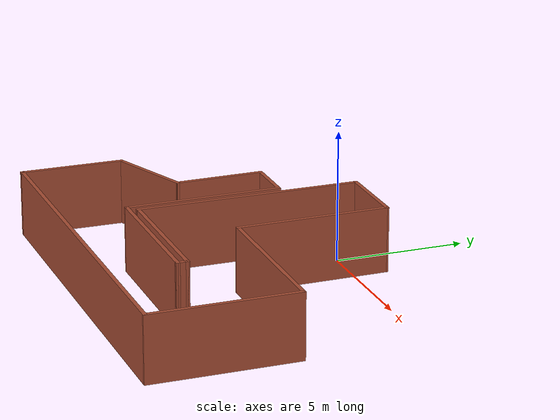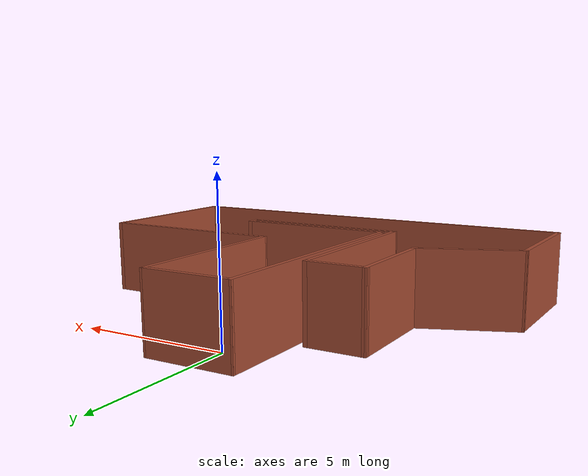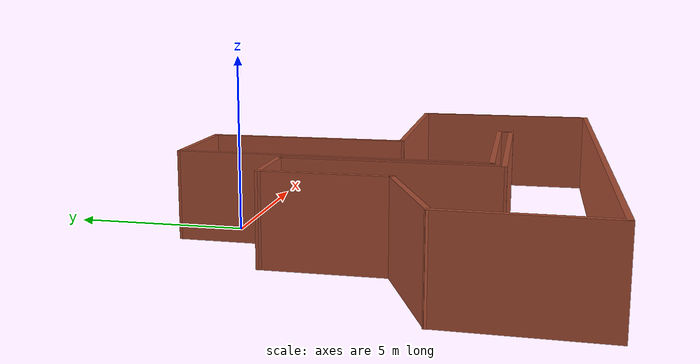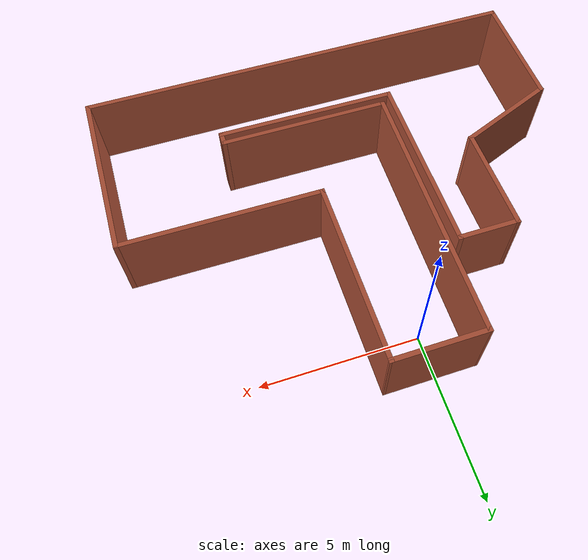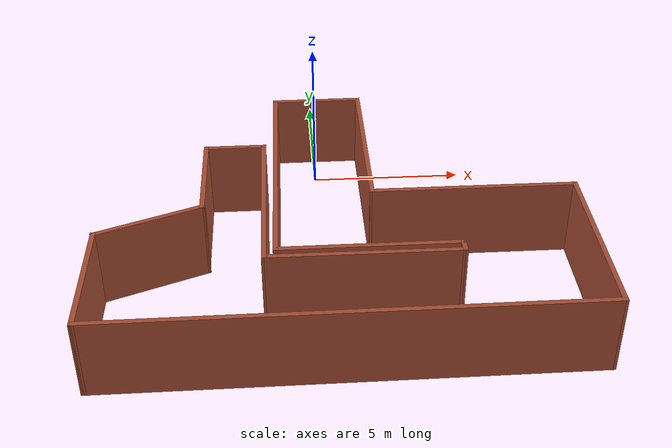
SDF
<?xml version='1.0'?>
<sdf version='1.7'>
  <model name='mini_maze'>
    <pose>0.607546 -4.37595 0 0 -0 0</pose>
    <link name='Wall_10'>
      <collision name='Wall_10_Collision'>
        <geometry>
          <box>
            <size>2 0.15 2.5</size>
          </box>
        </geometry>
        <pose>0 0 1.25 0 -0 0</pose>
      </collision>
      <visual name='Wall_10_Visual'>
        <pose>0 0 1.25 0 -0 0</pose>
        <geometry>
          <box>
            <size>2 0.15 2.5</size>
          </box>
        </geometry>
        <material>
          <script>
            <uri>file://media/materials/scripts/gazebo.material</uri>
            <name>Gazebo/Bricks</name>
          </script>
          <ambient>1 1 1 1</ambient>
        </material>
        <meta>
          <layer>0</layer>
        </meta>
      </visual>
      <pose>-3.23644 2.71458 0 0 -0 0</pose>
    </link>
    <link name='Wall_11'>
      <collision name='Wall_11_Collision'>
        <geometry>
          <box>
            <size>6 0.15 2.5</size>
          </box>
        </geometry>
        <pose>0 0 1.25 0 -0 0</pose>
      </collision>
      <visual name='Wall_11_Visual'>
        <pose>0 0 1.25 0 -0 0</pose>
        <geometry>
          <box>
            <size>6 0.15 2.5</size>
          </box>
        </geometry>
        <material>
          <script>
            <uri>file://media/materials/scripts/gazebo.material</uri>
            <name>Gazebo/Bricks</name>
          </script>
          <ambient>1 1 1 1</ambient>
        </material>
        <meta>
          <layer>0</layer>
        </meta>
      </visual>
      <pose>-2.31144 -0.210418 0 0 -0 -1.5708</pose>
    </link>
    <link name='Wall_12'>
      <collision name='Wall_12_Collision'>
        <geometry>
          <box>
            <size>5.82956 0.15 2.5</size>
          </box>
        </geometry>
        <pose>0 0 1.25 0 -0 0</pose>
      </collision>
      <visual name='Wall_12_Visual'>
        <pose>0 0 1.25 0 -0 0</pose>
        <geometry>
          <box>
            <size>5.82956 0.15 2.5</size>
          </box>
        </geometry>
        <material>
          <script>
            <uri>file://media/materials/scripts/gazebo.material</uri>
            <name>Gazebo/Bricks</name>
          </script>
          <ambient>1 1 1 1</ambient>
        </material>
        <meta>
          <layer>0</layer>
        </meta>
      </visual>
      <pose>0.528321 -3.14603 0 0 -0 -0.003737</pose>
    </link>
    <link name='Wall_13'>
      <collision name='Wall_13_Collision'>
        <geometry>
          <box>
            <size>0.5 0.15 2.5</size>
          </box>
        </geometry>
        <pose>0 0 1.25 0 -0 0</pose>
      </collision>
      <visual name='Wall_13_Visual'>
        <pose>0 0 1.25 0 -0 0</pose>
        <geometry>
          <box>
            <size>0.5 0.15 2.5</size>
          </box>
        </geometry>
        <material>
          <script>
            <uri>file://media/materials/scripts/gazebo.material</uri>
            <name>Gazebo/Bricks</name>
          </script>
          <ambient>1 1 1 1</ambient>
        </material>
        <meta>
          <layer>0</layer>
        </meta>
      </visual>
      <pose>3.36808 -2.98164 0 0 -0 1.5708</pose>
    </link>
    <link name='Wall_14'>
      <collision name='Wall_14_Collision'>
        <geometry>
          <box>
            <size>5.5 0.15 2.5</size>
          </box>
        </geometry>
        <pose>0 0 1.25 0 -0 0</pose>
      </collision>
      <visual name='Wall_14_Visual'>
        <pose>0 0 1.25 0 -0 0</pose>
        <geometry>
          <box>
            <size>5.5 0.15 2.5</size>
          </box>
        </geometry>
        <material>
          <script>
            <uri>file://media/materials/scripts/gazebo.material</uri>
            <name>Gazebo/Bricks</name>
          </script>
          <ambient>1 1 1 1</ambient>
        </material>
        <meta>
          <layer>0</layer>
        </meta>
      </visual>
      <pose>0.693081 -2.80664 0 0 -0 3.14159</pose>
    </link>
    <link name='Wall_15'>
      <collision name='Wall_15_Collision'>
        <geometry>
          <box>
            <size>8.59355 0.15 2.5</size>
          </box>
        </geometry>
        <pose>0 0 1.25 0 -0 0</pose>
      </collision>
      <visual name='Wall_15_Visual'>
        <pose>0 0 1.25 0 -0 0</pose>
        <geometry>
          <box>
            <size>8.59355 0.15 2.5</size>
          </box>
        </geometry>
        <material>
          <script>
            <uri>file://media/materials/scripts/gazebo.material</uri>
            <name>Gazebo/Bricks</name>
          </script>
          <ambient>1 1 1 1</ambient>
        </material>
        <meta>
          <layer>0</layer>
        </meta>
      </visual>
      <pose>-1.93911 1.41492 0 0 -0 1.56065</pose>
    </link>
    <link name='Wall_2'>
      <collision name='Wall_2_Collision'>
        <geometry>
          <box>
            <size>3 0.15 2.5</size>
          </box>
        </geometry>
        <pose>0 0 1.25 0 -0 0</pose>
      </collision>
      <visual name='Wall_2_Visual'>
        <pose>0 0 1.25 0 -0 0</pose>
        <geometry>
          <box>
            <size>3 0.15 2.5</size>
          </box>
        </geometry>
        <material>
          <script>
            <uri>file://media/materials/scripts/gazebo.material</uri>
            <name>Gazebo/Bricks</name>
          </script>
          <ambient>1 1 1 1</ambient>
        </material>
        <meta>
          <layer>0</layer>
        </meta>
      </visual>
      <pose>-0.471292 5.63647 0 0 -0 0</pose>
    </link>
    <link name='Wall_3'>
      <collision name='Wall_3_Collision'>
        <geometry>
          <box>
            <size>5.86232 0.15 2.5</size>
          </box>
        </geometry>
        <pose>0 0 1.25 0 -0 0</pose>
      </collision>
      <visual name='Wall_3_Visual'>
        <pose>0 0 1.25 0 -0 0</pose>
        <geometry>
          <box>
            <size>5.86232 0.15 2.5</size>
          </box>
        </geometry>
        <material>
          <script>
            <uri>file://media/materials/scripts/gazebo.material</uri>
            <name>Gazebo/Bricks</name>
          </script>
          <ambient>1 1 1 1</ambient>
        </material>
        <meta>
          <layer>0</layer>
        </meta>
      </visual>
      <pose>0.969816 2.78036 0 0 -0 -1.56516</pose>
    </link>
    <link name='Wall_4'>
      <collision name='Wall_4_Collision'>
        <geometry>
          <box>
            <size>6.4083 0.15 2.5</size>
          </box>
        </geometry>
        <pose>0 0 1.25 0 -0 0</pose>
      </collision>
      <visual name='Wall_4_Visual'>
        <pose>0 0 1.25 0 -0 0</pose>
        <geometry>
          <box>
            <size>6.4083 0.15 2.5</size>
          </box>
        </geometry>
        <material>
          <script>
            <uri>file://media/materials/scripts/gazebo.material</uri>
            <name>Gazebo/Bricks</name>
          </script>
          <ambient>1 1 1 1</ambient>
        </material>
        <meta>
          <layer>0</layer>
        </meta>
      </visual>
      <pose>4.11506 -0.083135 0 0 -0 -0.002357</pose>
    </link>
    <link name='Wall_5'>
      <collision name='Wall_5_Collision'>
        <geometry>
          <box>
            <size>5.66771 0.15 2.5</size>
          </box>
        </geometry>
        <pose>0 0 1.25 0 -0 0</pose>
      </collision>
      <visual name='Wall_5_Visual'>
        <pose>0 0 1.25 0 -0 0</pose>
        <geometry>
          <box>
            <size>5.66771 0.15 2.5</size>
          </box>
        </geometry>
        <material>
          <script>
            <uri>file://media/materials/scripts/gazebo.material</uri>
            <name>Gazebo/Bricks</name>
          </script>
          <ambient>1 1 1 1</ambient>
        </material>
        <meta>
          <layer>0</layer>
        </meta>
      </visual>
      <pose>7.25198 -2.84936 0 0 -0 -1.57332</pose>
    </link>
    <link name='Wall_6'>
      <collision name='Wall_6_Collision'>
        <geometry>
          <box>
            <size>14.5919 0.15 2.5</size>
          </box>
        </geometry>
        <pose>0 0 1.25 0 -0 0</pose>
      </collision>
      <visual name='Wall_6_Visual'>
        <pose>0 0 1.25 0 -0 0</pose>
        <geometry>
          <box>
            <size>14.5919 0.15 2.5</size>
          </box>
        </geometry>
        <material>
          <script>
            <uri>file://media/materials/scripts/gazebo.material</uri>
            <name>Gazebo/Bricks</name>
          </script>
          <ambient>1 1 1 1</ambient>
        </material>
        <meta>
          <layer>0</layer>
        </meta>
      </visual>
      <pose>0.00933 -5.62227 0 0 -0 -3.13964</pose>
    </link>
    <link name='Wall_7'>
      <collision name='Wall_7_Collision'>
        <geometry>
          <box>
            <size>4.00371 0.15 2.5</size>
          </box>
        </geometry>
        <pose>0 0 1.25 0 -0 0</pose>
      </collision>
      <visual name='Wall_7_Visual'>
        <pose>0 0 1.25 0 -0 0</pose>
        <geometry>
          <box>
            <size>4.00371 0.15 2.5</size>
          </box>
        </geometry>
        <material>
          <script>
            <uri>file://media/materials/scripts/gazebo.material</uri>
            <name>Gazebo/Bricks</name>
          </script>
          <ambient>1 1 1 1</ambient>
        </material>
        <meta>
          <layer>0</layer>
        </meta>
      </visual>
      <pose>-7.23533 -3.70962 0 0 -0 1.5589</pose>
    </link>
    <link name='Wall_8'>
      <collision name='Wall_8_Collision'>
        <geometry>
          <box>
            <size>3.45415 0.15 2.5</size>
          </box>
        </geometry>
        <pose>0 0 1.25 0 -0 0</pose>
      </collision>
      <visual name='Wall_8_Visual'>
        <pose>0 0 1.25 0 -0 0</pose>
        <geometry>
          <box>
            <size>3.45415 0.15 2.5</size>
          </box>
        </geometry>
        <material>
          <script>
            <uri>file://media/materials/scripts/gazebo.material</uri>
            <name>Gazebo/Bricks</name>
          </script>
          <ambient>1 1 1 1</ambient>
        </material>
        <meta>
          <layer>0</layer>
        </meta>
      </visual>
      <pose>-5.67525 -1.17748 0 0 -0 0.375204</pose>
    </link>
    <link name='Wall_9'>
      <collision name='Wall_9_Collision'>
        <geometry>
          <box>
            <size>3.43672 0.15 2.5</size>
          </box>
        </geometry>
        <pose>0 0 1.25 0 -0 0</pose>
      </collision>
      <visual name='Wall_9_Visual'>
        <pose>0 0 1.25 0 -0 0</pose>
        <geometry>
          <box>
            <size>3.43672 0.15 2.5</size>
          </box>
        </geometry>
        <material>
          <script>
            <uri>file://media/materials/scripts/gazebo.material</uri>
            <name>Gazebo/Bricks</name>
          </script>
          <ambient>1 1 1 1</ambient>
        </material>
        <meta>
          <layer>0</layer>
        </meta>
      </visual>
      <pose>-4.15561 1.07126 0 0 -0 1.57435</pose>
    </link>
    <static>1</static>
  </model>
</sdf>
